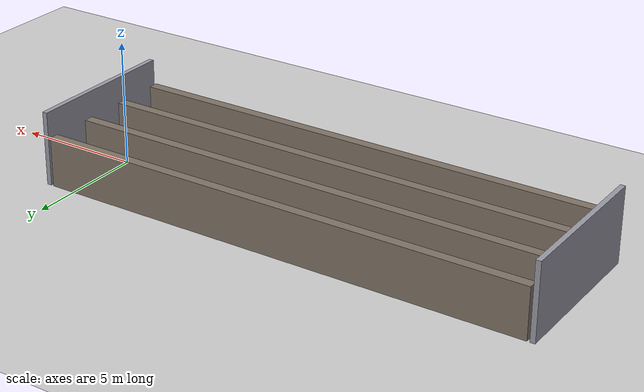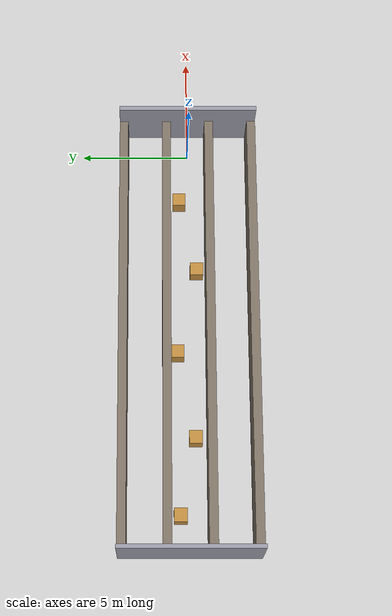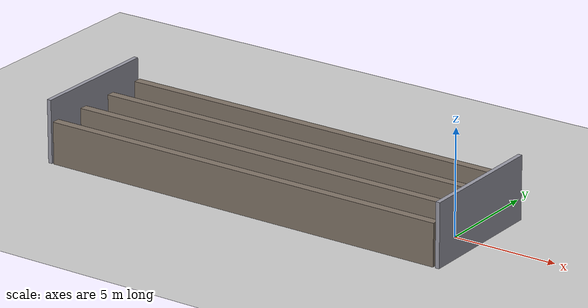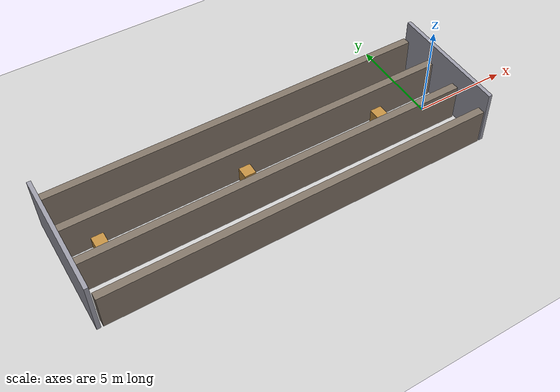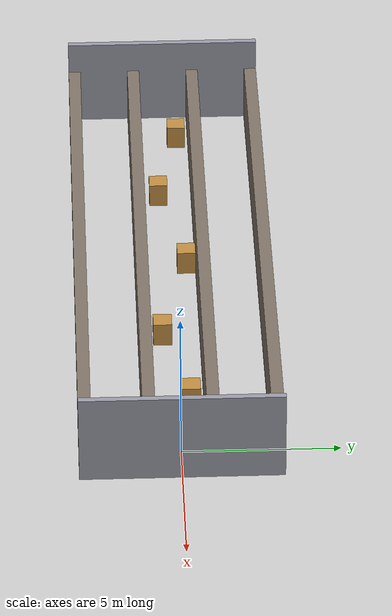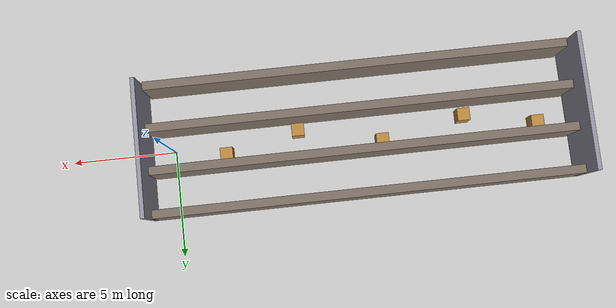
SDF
<?xml version="1.0" ?>
<sdf version="1.5">
  <world name="default">
    <include>
      <uri>model://sun</uri>
    </include>
    <include>
      <uri>model://ground_plane</uri>
    </include>

    <model name="shelf_row_0">
      <static>true</static>
      <pose>-9.0 -3.0 1.0 0 0 0</pose>
      <link name="link">
        <collision name="collision">
          <geometry><box><size>20.0 0.4 2.0</size></box></geometry>
        </collision>
        <visual name="visual">
          <geometry><box><size>20.0 0.4 2.0</size></box></geometry>
          <material><ambient>0.5 0.45 0.4 1</ambient><diffuse>0.5 0.45 0.4 1</diffuse></material>
        </visual>
      </link>
    </model>

    <model name="shelf_row_1">
      <static>true</static>
      <pose>-9.0 -1.0 1.0 0 0 0</pose>
      <link name="link">
        <collision name="collision">
          <geometry><box><size>20.0 0.4 2.0</size></box></geometry>
        </collision>
        <visual name="visual">
          <geometry><box><size>20.0 0.4 2.0</size></box></geometry>
          <material><ambient>0.5 0.45 0.4 1</ambient><diffuse>0.5 0.45 0.4 1</diffuse></material>
        </visual>
      </link>
    </model>

    <model name="shelf_row_2">
      <static>true</static>
      <pose>-9.0 1.0 1.0 0 0 0</pose>
      <link name="link">
        <collision name="collision">
          <geometry><box><size>20.0 0.4 2.0</size></box></geometry>
        </collision>
        <visual name="visual">
          <geometry><box><size>20.0 0.4 2.0</size></box></geometry>
          <material><ambient>0.5 0.45 0.4 1</ambient><diffuse>0.5 0.45 0.4 1</diffuse></material>
        </visual>
      </link>
    </model>

    <model name="shelf_row_3">
      <static>true</static>
      <pose>-9.0 3.0 1.0 0 0 0</pose>
      <link name="link">
        <collision name="collision">
          <geometry><box><size>20.0 0.4 2.0</size></box></geometry>
        </collision>
        <visual name="visual">
          <geometry><box><size>20.0 0.4 2.0</size></box></geometry>
          <material><ambient>0.5 0.45 0.4 1</ambient><diffuse>0.5 0.45 0.4 1</diffuse></material>
        </visual>
      </link>
    </model>

    <model name="crate_0">
      <static>true</static>
      <pose>-2.5 0.4 0.4 0 0 0</pose>
      <link name="link">
        <collision name="collision">
          <geometry><box><size>0.6 0.6 0.8</size></box></geometry>
        </collision>
        <visual name="visual">
          <geometry><box><size>0.6 0.6 0.8</size></box></geometry>
          <material><ambient>0.75 0.55 0.25 1</ambient><diffuse>0.75 0.55 0.25 1</diffuse></material>
        </visual>
      </link>
    </model>

    <model name="crate_1">
      <static>true</static>
      <pose>-6.0 -0.4 0.4 0 0 0</pose>
      <link name="link">
        <collision name="collision">
          <geometry><box><size>0.6 0.6 0.8</size></box></geometry>
        </collision>
        <visual name="visual">
          <geometry><box><size>0.6 0.6 0.8</size></box></geometry>
          <material><ambient>0.75 0.55 0.25 1</ambient><diffuse>0.75 0.55 0.25 1</diffuse></material>
        </visual>
      </link>
    </model>

    <model name="crate_2">
      <static>true</static>
      <pose>-10.0 0.5 0.4 0 0 0</pose>
      <link name="link">
        <collision name="collision">
          <geometry><box><size>0.6 0.6 0.8</size></box></geometry>
        </collision>
        <visual name="visual">
          <geometry><box><size>0.6 0.6 0.8</size></box></geometry>
          <material><ambient>0.75 0.55 0.25 1</ambient><diffuse>0.75 0.55 0.25 1</diffuse></material>
        </visual>
      </link>
    </model>

    <model name="crate_3">
      <static>true</static>
      <pose>-14.0 -0.3 0.4 0 0 0</pose>
      <link name="link">
        <collision name="collision">
          <geometry><box><size>0.6 0.6 0.8</size></box></geometry>
        </collision>
        <visual name="visual">
          <geometry><box><size>0.6 0.6 0.8</size></box></geometry>
          <material><ambient>0.75 0.55 0.25 1</ambient><diffuse>0.75 0.55 0.25 1</diffuse></material>
        </visual>
      </link>
    </model>

    <model name="crate_4">
      <static>true</static>
      <pose>-17.5 0.4 0.4 0 0 0</pose>
      <link name="link">
        <collision name="collision">
          <geometry><box><size>0.6 0.6 0.8</size></box></geometry>
        </collision>
        <visual name="visual">
          <geometry><box><size>0.6 0.6 0.8</size></box></geometry>
          <material><ambient>0.75 0.55 0.25 1</ambient><diffuse>0.75 0.55 0.25 1</diffuse></material>
        </visual>
      </link>
    </model>

    <model name="end_wall_far">
      <static>true</static>
      <pose>-19.2 0.0 1.5 0 0 0</pose>
      <link name="link">
        <collision name="collision">
          <geometry><box><size>0.2 6.4 3.0</size></box></geometry>
        </collision>
        <visual name="visual">
          <geometry><box><size>0.2 6.4 3.0</size></box></geometry>
          <material><ambient>0.6 0.6 0.65 1</ambient><diffuse>0.6 0.6 0.65 1</diffuse></material>
        </visual>
      </link>
    </model>

    <model name="end_wall_near">
      <static>true</static>
      <pose>1.2 0.0 1.5 0 0 0</pose>
      <link name="link">
        <collision name="collision">
          <geometry><box><size>0.2 6.4 3.0</size></box></geometry>
        </collision>
        <visual name="visual">
          <geometry><box><size>0.2 6.4 3.0</size></box></geometry>
          <material><ambient>0.6 0.6 0.65 1</ambient><diffuse>0.6 0.6 0.65 1</diffuse></material>
        </visual>
      </link>
    </model>
  </world>
</sdf>
